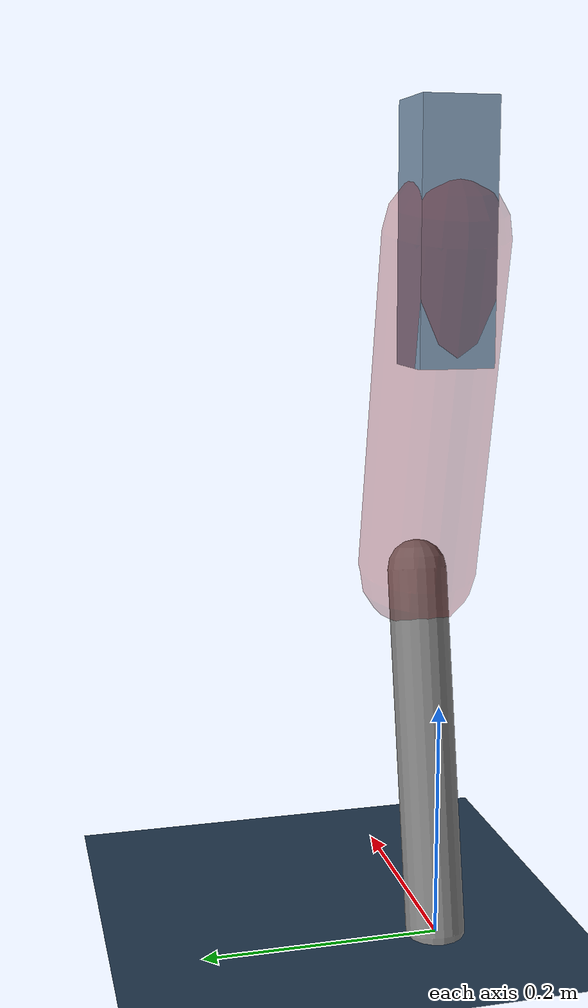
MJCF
<mujoco model="Hopper2D">
	<compiler inertiafromgeom="true" angle="radian" />
	<option timestep="0.001" integrator="implicit" cone="elliptic" solver="Newton" tolerance="1e-10" />

	<default>
		<geom contype="1" conaffinity="1" condim="3" friction="2 0.005 0.0001" solref="0.005 1" />
		<joint limited="true" damping="0.1" />
	</default>

	<asset>
		<texture name="skybox" type="skybox" builtin="gradient" rgb1=".4 .6 .8" rgb2="0 0 0" width="800" height="800" />
		<texture name="grid" type="2d" builtin="checker" rgb1=".1 .2 .3" rgb2=".2 .3 .4" width="300" height="300" mark="edge" markrgb=".2 .3 .4" />
		<material name="ground" texture="grid" texrepeat="1 1" texuniform="true" reflectance="0.1" />
		<material name="leg" rgba="0.5 0.6 0.7 1" />
	</asset>

	<worldbody>

		<geom name="floor" type="plane" size="5 5 0.25" material="ground" />

		<light directional="false" diffuse="0.8 0.8 0.8" specular="0.3 0.3 0.3" pos="0 0 2" dir="0 0 -1" />
		<light mode="targetbodycom" target="base" directional="false" diffuse="0.8 0.8 0.8" specular="0.3 0.3 0.3" pos="0 0 2" dir="0 0 -1" />

		<camera name="fixed" pos="0 -2 1" xyaxes="1 0 0 0 0 1" />
		<camera name="tracking" mode="trackcom" pos="0 -3 1" />

		<body name="root" pos="0 0 0.5790931422376695">
			<joint name="slide_x" type="slide" axis="1 0 0" range="-100 100" />
			<joint name="slide_z" type="slide" axis="0 0 1" range="0 10" />

			<body name="base" pos="0 0 0">
				<geom name="torso" type="box" size="0.03 0.03 0.1" mass="1.682" material="leg" />

				<body name="link1" pos="0 0 0" euler="0 1.3428014890258215 0">
					<joint type="hinge" axis="0 -1 0" pos="0 0 0" name="hinge1" limited="true" range="-3.14 3.14" stiffness="0" damping="0.1" />
					<geom name="thigh" type="capsule" fromto="0 0 0 0.2833196818900285 0 0" size="0.05" rgba="0.5 0 0 0.3" mass="0.943963141103077" />

					<body name="link2" pos="0.2833196818900285 0 0" euler="0 0.4362036646674318 0">
						<joint type="hinge" axis="0 -1 0" pos="0 0 0" name="hinge2" limited="true" range="-3.14 3.14" stiffness="0" damping="0.1" />
						<geom name="shank" type="capsule" fromto="0 0 0 0.30979607760924954 0 0" size="0.025" mass="0.4914164698483246" />

					</body>
				</body>
			</body>
		</body>
	</worldbody>

	<actuator>
		<motor name="torque1" joint="hinge1" ctrlrange="-14.830919088157197 14.830919088157197" ctrllimited="true" gear="1" />
		<motor name="torque2" joint="hinge2" ctrlrange="-97.45822259968442 97.45822259968442" ctrllimited="true" gear="1" />
	</actuator>
</mujoco>
